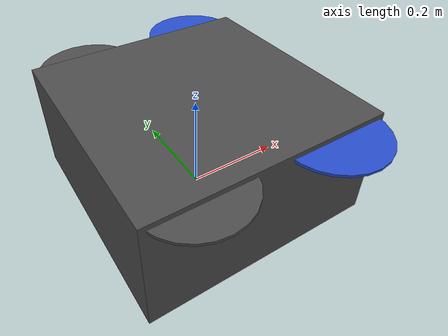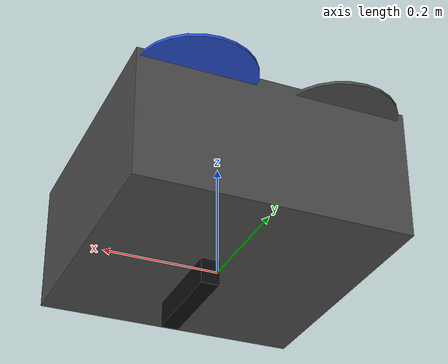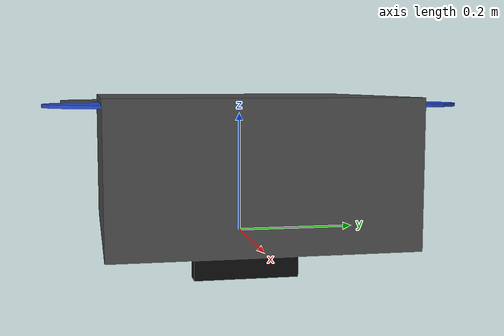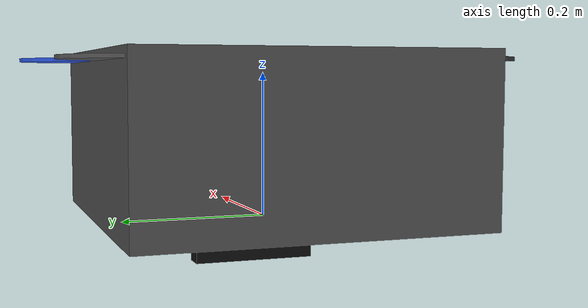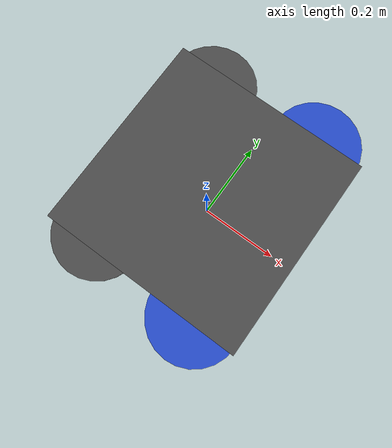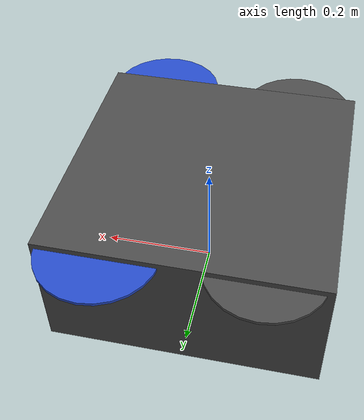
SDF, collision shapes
<?xml version='1.0'?>
<sdf version="1.9">
  <model name="obs_drone">
    <include>
      <uri>model://zed_drone</uri>
    </include>

    <!--
      visual markers for debugging
      - blade root    - teal
      - blade tip     - orange
      - blade cp      - yellow
      - blade forward - red
      - blade upward  - blue
    -->

    <!-- plugins -->
    <plugin filename="gz-sim-joint-state-publisher-system"
      name="gz::sim::systems::JointStatePublisher">
    </plugin>
    <plugin filename="gz-sim-lift-drag-system"
        name="gz::sim::systems::LiftDrag">
      <a0>0.3</a0>
      <alpha_stall>1.4</alpha_stall>
      <cla>4.2500</cla>
      <cda>0.10</cda>
      <cma>0.0</cma>
      <cla_stall>-0.025</cla_stall>
      <cda_stall>0.0</cda_stall>
      <cma_stall>0.0</cma_stall>
      <area>0.002</area>
      <air_density>1.2041</air_density>
      <cp>0.084 0 0</cp>
      <forward>0 1 0</forward>
      <upward>0 0 1</upward>
      <link_name>iris_with_standoffs::rotor_0</link_name>
    </plugin>
    <plugin filename="gz-sim-lift-drag-system"
        name="gz::sim::systems::LiftDrag">
      <a0>0.3</a0>
      <alpha_stall>1.4</alpha_stall>
      <cla>4.2500</cla>
      <cda>0.10</cda>
      <cma>0.0</cma>
      <cla_stall>-0.025</cla_stall>
      <cda_stall>0.0</cda_stall>
      <cma_stall>0.0</cma_stall>
      <area>0.002</area>
      <air_density>1.2041</air_density>
      <cp>-0.084 0 0</cp>
      <forward>0 -1 0</forward>
      <upward>0 0 1</upward>
      <link_name>iris_with_standoffs::rotor_0</link_name>
    </plugin>

    <plugin filename="gz-sim-lift-drag-system"
        name="gz::sim::systems::LiftDrag">
      <a0>0.3</a0>
      <alpha_stall>1.4</alpha_stall>
      <cla>4.2500</cla>
      <cda>0.10</cda>
      <cma>0.0</cma>
      <cla_stall>-0.025</cla_stall>
      <cda_stall>0.0</cda_stall>
      <cma_stall>0.0</cma_stall>
      <area>0.002</area>
      <air_density>1.2041</air_density>
      <cp>0.084 0 0</cp>
      <forward>0 1 0</forward>
      <upward>0 0 1</upward>
      <link_name>iris_with_standoffs::rotor_1</link_name>
    </plugin>
    <plugin filename="gz-sim-lift-drag-system"
        name="gz::sim::systems::LiftDrag">
      <a0>0.3</a0>
      <alpha_stall>1.4</alpha_stall>
      <cla>4.2500</cla>
      <cda>0.10</cda>
      <cma>0.0</cma>
      <cla_stall>-0.025</cla_stall>
      <cda_stall>0.0</cda_stall>
      <cma_stall>0.0</cma_stall>
      <area>0.002</area>
      <air_density>1.2041</air_density>
      <cp>-0.084 0 0</cp>
      <forward>0 -1 0</forward>
      <upward>0 0 1</upward>
      <link_name>iris_with_standoffs::rotor_1</link_name>
    </plugin>

    <plugin filename="gz-sim-lift-drag-system"
        name="gz::sim::systems::LiftDrag">
      <a0>0.3</a0>
      <alpha_stall>1.4</alpha_stall>
      <cla>4.2500</cla>
      <cda>0.10</cda>
      <cma>0.0</cma>
      <cla_stall>-0.025</cla_stall>
      <cda_stall>0.0</cda_stall>
      <cma_stall>0.0</cma_stall>
      <area>0.002</area>
      <air_density>1.2041</air_density>
      <cp>0.084 0 0</cp>
      <forward>0 -1 0</forward>
      <upward>0 0 1</upward>
      <link_name>iris_with_standoffs::rotor_2</link_name>
    </plugin>
    <plugin filename="gz-sim-lift-drag-system"
        name="gz::sim::systems::LiftDrag">
      <a0>0.3</a0>
      <alpha_stall>1.4</alpha_stall>
      <cla>4.2500</cla>
      <cda>0.10</cda>
      <cma>0.0</cma>
      <cla_stall>-0.025</cla_stall>
      <cda_stall>0.0</cda_stall>
      <cma_stall>0.0</cma_stall>
      <area>0.002</area>
      <air_density>1.2041</air_density>
      <cp>-0.084 0 0</cp>
      <forward>0 1 0</forward>
      <upward>0 0 1</upward>
      <link_name>iris_with_standoffs::rotor_2</link_name>
    </plugin>

    <plugin filename="gz-sim-lift-drag-system"
        name="gz::sim::systems::LiftDrag">
      <a0>0.3</a0>
      <alpha_stall>1.4</alpha_stall>
      <cla>4.2500</cla>
      <cda>0.10</cda>
      <cma>0.0</cma>
      <cla_stall>-0.025</cla_stall>
      <cda_stall>0.0</cda_stall>
      <cma_stall>0.0</cma_stall>
      <area>0.002</area>
      <air_density>1.2041</air_density>
      <cp>0.084 0 0</cp>
      <forward>0 -1 0</forward>
      <upward>0 0 1</upward>
      <link_name>iris_with_standoffs::rotor_3</link_name>
    </plugin>
    <plugin filename="gz-sim-lift-drag-system"
        name="gz::sim::systems::LiftDrag">
      <a0>0.3</a0>
      <alpha_stall>1.4</alpha_stall>
      <cla>4.2500</cla>
      <cda>0.10</cda>
      <cma>0.0</cma>
      <cla_stall>-0.025</cla_stall>
      <cda_stall>0.0</cda_stall>
      <cma_stall>0.0</cma_stall>
      <area>0.002</area>
      <air_density>1.2041</air_density>
      <cp>-0.084 0 0</cp>
      <forward>0 1 0</forward>
      <upward>0 0 1</upward>
      <link_name>iris_with_standoffs::rotor_3</link_name>
    </plugin>

    <plugin filename="gz-sim-apply-joint-force-system"
      name="gz::sim::systems::ApplyJointForce">
      <joint_name>iris_with_standoffs::rotor_0_joint</joint_name>
    </plugin>
    <plugin filename="gz-sim-apply-joint-force-system"
      name="gz::sim::systems::ApplyJointForce">
      <joint_name>iris_with_standoffs::rotor_1_joint</joint_name>
    </plugin>
    <plugin filename="gz-sim-apply-joint-force-system"
      name="gz::sim::systems::ApplyJointForce">
      <joint_name>iris_with_standoffs::rotor_2_joint</joint_name>
    </plugin>
    <plugin filename="gz-sim-apply-joint-force-system"
      name="gz::sim::systems::ApplyJointForce">
      <joint_name>iris_with_standoffs::rotor_3_joint</joint_name>
    </plugin>

    <plugin name="ArduPilotPlugin"
      filename="ArduPilotPlugin">
      <!-- Port settings -->
      <fdm_addr>127.0.0.1</fdm_addr>
      <fdm_port_in>9012</fdm_port_in>
      <connectionTimeoutMaxCount>5</connectionTimeoutMaxCount>
      <lock_step>1</lock_step>
      <have_32_channels>0</have_32_channels>

      <!-- Frame conventions
        Require by ArduPilot: change model and gazebo from XYZ to XY-Z coordinates
      -->
      <modelXYZToAirplaneXForwardZDown degrees="true">0 0 0 180 0 0</modelXYZToAirplaneXForwardZDown>
      <gazeboXYZToNED degrees="true">0 0 0 180 0 90</gazeboXYZToNED>

      <!-- Sensors -->
      <imuName>iris_with_standoffs::imu_link::imu_sensor</imuName>

      <!--
          incoming control command [0, 1]
          so offset it by 0 to get [0, 1]
          and divide max target by 1.
          offset = 0
          multiplier = 838 max rpm / 1 = 838
        -->
      <control channel="0">
        <jointName>iris_with_standoffs::rotor_0_joint</jointName>
        <useForce>1</useForce>
        <multiplier>838</multiplier>
        <offset>0</offset>
        <servo_min>1100</servo_min>
        <servo_max>1900</servo_max>
        <type>VELOCITY</type>
        <p_gain>0.20</p_gain>
        <i_gain>0</i_gain>
        <d_gain>0</d_gain>
        <i_max>0</i_max>
        <i_min>0</i_min>
        <cmd_max>2.5</cmd_max>
        <cmd_min>-2.5</cmd_min>
        <controlVelocitySlowdownSim>1</controlVelocitySlowdownSim>
      </control>

      <control channel="1">
        <jointName>iris_with_standoffs::rotor_1_joint</jointName>
        <useForce>1</useForce>
        <multiplier>838</multiplier>
        <offset>0</offset>
        <servo_min>1100</servo_min>
        <servo_max>1900</servo_max>
        <type>VELOCITY</type>
        <p_gain>0.20</p_gain>
        <i_gain>0</i_gain>
        <d_gain>0</d_gain>
        <i_max>0</i_max>
        <i_min>0</i_min>
        <cmd_max>2.5</cmd_max>
        <cmd_min>-2.5</cmd_min>
        <controlVelocitySlowdownSim>1</controlVelocitySlowdownSim>
      </control>

      <control channel="2">
        <jointName>iris_with_standoffs::rotor_2_joint</jointName>
        <useForce>1</useForce>
        <multiplier>-838</multiplier>
        <offset>0</offset>
        <servo_min>1100</servo_min>
        <servo_max>1900</servo_max>
        <type>VELOCITY</type>
        <p_gain>0.20</p_gain>
        <i_gain>0</i_gain>
        <d_gain>0</d_gain>
        <i_max>0</i_max>
        <i_min>0</i_min>
        <cmd_max>2.5</cmd_max>
        <cmd_min>-2.5</cmd_min>
        <controlVelocitySlowdownSim>1</controlVelocitySlowdownSim>
      </control>

      <control channel="3">
        <jointName>iris_with_standoffs::rotor_3_joint</jointName>
        <useForce>1</useForce>
        <multiplier>-838</multiplier>
        <offset>0</offset>
        <servo_min>1100</servo_min>
        <servo_max>1900</servo_max>
        <type>VELOCITY</type>
        <p_gain>0.20</p_gain>
        <i_gain>0</i_gain>
        <d_gain>0</d_gain>
        <i_max>0</i_max>
        <i_min>0</i_min>
        <cmd_max>2.5</cmd_max>
        <cmd_min>-2.5</cmd_min>
        <controlVelocitySlowdownSim>1</controlVelocitySlowdownSim>
      </control>

    </plugin>

  </model>
</sdf>

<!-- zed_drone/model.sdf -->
<sdf version="1.9">
  <model name="obs_drone">
    <include>
      <uri>model://iris_with_standoffs</uri>
    </include>

    <include>
      <uri>model://zed2i</uri>
      <name>zed2i</name>
      <pose degrees="true">0.05 0 -0.05 0 0 90</pose>
    </include>

    <!-- plugins -->
    <plugin filename="gz-sim-joint-state-publisher-system"
      name="gz::sim::systems::JointStatePublisher">
    </plugin>
    <plugin filename="gz-sim-lift-drag-system"
        name="gz::sim::systems::LiftDrag">
      <a0>0.3</a0>
      <alpha_stall>1.4</alpha_stall>
      <cla>4.2500</cla>
      <cda>0.10</cda>
      <cma>0.0</cma>
      <cla_stall>-0.025</cla_stall>
      <cda_stall>0.0</cda_stall>
      <cma_stall>0.0</cma_stall>
      <area>0.002</area>
      <air_density>1.2041</air_density>
      <cp>0.084 0 0</cp>
      <forward>0 1 0</forward>
      <upward>0 0 1</upward>
      <link_name>iris_with_standoffs::rotor_0</link_name>
    </plugin>
    <plugin filename="gz-sim-lift-drag-system"
        name="gz::sim::systems::LiftDrag">
      <a0>0.3</a0>
      <alpha_stall>1.4</alpha_stall>
      <cla>4.2500</cla>
      <cda>0.10</cda>
      <cma>0.0</cma>
      <cla_stall>-0.025</cla_stall>
      <cda_stall>0.0</cda_stall>
      <cma_stall>0.0</cma_stall>
      <area>0.002</area>
      <air_density>1.2041</air_density>
      <cp>-0.084 0 0</cp>
      <forward>0 -1 0</forward>
      <upward>0 0 1</upward>
      <link_name>iris_with_standoffs::rotor_0</link_name>
    </plugin>

    <plugin filename="gz-sim-lift-drag-system"
        name="gz::sim::systems::LiftDrag">
      <a0>0.3</a0>
      <alpha_stall>1.4</alpha_stall>
      <cla>4.2500</cla>
      <cda>0.10</cda>
      <cma>0.0</cma>
      <cla_stall>-0.025</cla_stall>
      <cda_stall>0.0</cda_stall>
      <cma_stall>0.0</cma_stall>
      <area>0.002</area>
      <air_density>1.2041</air_density>
      <cp>0.084 0 0</cp>
      <forward>0 1 0</forward>
      <upward>0 0 1</upward>
      <link_name>iris_with_standoffs::rotor_1</link_name>
    </plugin>
    <plugin filename="gz-sim-lift-drag-system"
        name="gz::sim::systems::LiftDrag">
      <a0>0.3</a0>
      <alpha_stall>1.4</alpha_stall>
      <cla>4.2500</cla>
      <cda>0.10</cda>
      <cma>0.0</cma>
      <cla_stall>-0.025</cla_stall>
      <cda_stall>0.0</cda_stall>
      <cma_stall>0.0</cma_stall>
      <area>0.002</area>
      <air_density>1.2041</air_density>
      <cp>-0.084 0 0</cp>
      <forward>0 -1 0</forward>
      <upward>0 0 1</upward>
      <link_name>iris_with_standoffs::rotor_1</link_name>
    </plugin>

    <plugin filename="gz-sim-lift-drag-system"
        name="gz::sim::systems::LiftDrag">
      <a0>0.3</a0>
      <alpha_stall>1.4</alpha_stall>
      <cla>4.2500</cla>
      <cda>0.10</cda>
      <cma>0.0</cma>
      <cla_stall>-0.025</cla_stall>
      <cda_stall>0.0</cda_stall>
      <cma_stall>0.0</cma_stall>
      <area>0.002</area>
      <air_density>1.2041</air_density>
      <cp>0.084 0 0</cp>
      <forward>0 -1 0</forward>
      <upward>0 0 1</upward>
      <link_name>iris_with_standoffs::rotor_2</link_name>
    </plugin>
    <plugin filename="gz-sim-lift-drag-system"
        name="gz::sim::systems::LiftDrag">
      <a0>0.3</a0>
      <alpha_stall>1.4</alpha_stall>
      <cla>4.2500</cla>
      <cda>0.10</cda>
      <cma>0.0</cma>
      <cla_stall>-0.025</cla_stall>
      <cda_stall>0.0</cda_stall>
      <cma_stall>0.0</cma_stall>
      <area>0.002</area>
      <air_density>1.2041</air_density>
      <cp>-0.084 0 0</cp>
      <forward>0 1 0</forward>
      <upward>0 0 1</upward>
      <link_name>iris_with_standoffs::rotor_2</link_name>
    </plugin>

    <plugin filename="gz-sim-lift-drag-system"
        name="gz::sim::systems::LiftDrag">
      <a0>0.3</a0>
      <alpha_stall>1.4</alpha_stall>
      <cla>4.2500</cla>
      <cda>0.10</cda>
      <cma>0.0</cma>
      <cla_stall>-0.025</cla_stall>
      <cda_stall>0.0</cda_stall>
      <cma_stall>0.0</cma_stall>
      <area>0.002</area>
      <air_density>1.2041</air_density>
      <cp>0.084 0 0</cp>
      <forward>0 -1 0</forward>
      <upward>0 0 1</upward>
      <link_name>iris_with_standoffs::rotor_3</link_name>
    </plugin>
    <plugin filename="gz-sim-lift-drag-system"
        name="gz::sim::systems::LiftDrag">
      <a0>0.3</a0>
      <alpha_stall>1.4</alpha_stall>
      <cla>4.2500</cla>
      <cda>0.10</cda>
      <cma>0.0</cma>
      <cla_stall>-0.025</cla_stall>
      <cda_stall>0.0</cda_stall>
      <cma_stall>0.0</cma_stall>
      <area>0.002</area>
      <air_density>1.2041</air_density>
      <cp>-0.084 0 0</cp>
      <forward>0 1 0</forward>
      <upward>0 0 1</upward>
      <link_name>iris_with_standoffs::rotor_3</link_name>
    </plugin>

    <plugin filename="gz-sim-apply-joint-force-system"
      name="gz::sim::systems::ApplyJointForce">
      <joint_name>iris_with_standoffs::rotor_0_joint</joint_name>
    </plugin>
    <plugin filename="gz-sim-apply-joint-force-system"
      name="gz::sim::systems::ApplyJointForce">
      <joint_name>iris_with_standoffs::rotor_1_joint</joint_name>
    </plugin>
    <plugin filename="gz-sim-apply-joint-force-system"
      name="gz::sim::systems::ApplyJointForce">
      <joint_name>iris_with_standoffs::rotor_2_joint</joint_name>
    </plugin>
    <plugin filename="gz-sim-apply-joint-force-system"
      name="gz::sim::systems::ApplyJointForce">
      <joint_name>iris_with_standoffs::rotor_3_joint</joint_name>
    </plugin>

    <plugin name="ArduPilotPlugin"
      filename="ArduPilotPlugin">
      <!-- Port settings -->
      <fdm_addr>127.0.0.1</fdm_addr>
      <fdm_port_in>9012</fdm_port_in>
      <connectionTimeoutMaxCount>5</connectionTimeoutMaxCount>
      <lock_step>1</lock_step>
      <no_time_sync>1</no_time_sync>

      <!-- Frame conventions
        Require by ArduPilot: change model and gazebo from XYZ to XY-Z coordinates
      -->
      <modelXYZToAirplaneXForwardZDown degrees="true">0 0 0 180 0 0</modelXYZToAirplaneXForwardZDown>
      <gazeboXYZToNED degrees="true">0 0 0 180 0 90</gazeboXYZToNED>

      <!-- Sensors -->
      <imuName>iris_with_standoffs::imu_link::imu_sensor</imuName>

      <!--
          incoming control command [0, 1]
          so offset it by 0 to get [0, 1]
          and divide max target by 1.
          offset = 0
          multiplier = 838 max rpm / 1 = 838
        -->
      <control channel="0">
        <jointName>iris_with_standoffs::rotor_0_joint</jointName>
        <useForce>1</useForce>
        <multiplier>838</multiplier>
        <offset>0</offset>
        <servo_min>1100</servo_min>
        <servo_max>1900</servo_max>
        <type>VELOCITY</type>
        <p_gain>0.20</p_gain>
        <i_gain>0</i_gain>
        <d_gain>0</d_gain>
        <i_max>0</i_max>
        <i_min>0</i_min>
        <cmd_max>2.5</cmd_max>
        <cmd_min>-2.5</cmd_min>
        <controlVelocitySlowdownSim>1</controlVelocitySlowdownSim>
      </control>

      <control channel="1">
        <jointName>iris_with_standoffs::rotor_1_joint</jointName>
        <useForce>1</useForce>
        <multiplier>838</multiplier>
        <offset>0</offset>
        <servo_min>1100</servo_min>
        <servo_max>1900</servo_max>
        <type>VELOCITY</type>
        <p_gain>0.20</p_gain>
        <i_gain>0</i_gain>
        <d_gain>0</d_gain>
        <i_max>0</i_max>
        <i_min>0</i_min>
        <cmd_max>2.5</cmd_max>
        <cmd_min>-2.5</cmd_min>
        <controlVelocitySlowdownSim>1</controlVelocitySlowdownSim>
      </control>

      <control channel="2">
        <jointName>iris_with_standoffs::rotor_2_joint</jointName>
        <useForce>1</useForce>
        <multiplier>-838</multiplier>
        <offset>0</offset>
        <servo_min>1100</servo_min>
        <servo_max>1900</servo_max>
        <type>VELOCITY</type>
        <p_gain>0.20</p_gain>
        <i_gain>0</i_gain>
        <d_gain>0</d_gain>
        <i_max>0</i_max>
        <i_min>0</i_min>
        <cmd_max>2.5</cmd_max>
        <cmd_min>-2.5</cmd_min>
        <controlVelocitySlowdownSim>1</controlVelocitySlowdownSim>
      </control>

      <control channel="3">
        <jointName>iris_with_standoffs::rotor_3_joint</jointName>
        <useForce>1</useForce>
        <multiplier>-838</multiplier>
        <offset>0</offset>
        <servo_min>1100</servo_min>
        <servo_max>1900</servo_max>
        <type>VELOCITY</type>
        <p_gain>0.20</p_gain>
        <i_gain>0</i_gain>
        <d_gain>0</d_gain>
        <i_max>0</i_max>
        <i_min>0</i_min>
        <cmd_max>2.5</cmd_max>
        <cmd_min>-2.5</cmd_min>
        <controlVelocitySlowdownSim>1</controlVelocitySlowdownSim>
      </control>

      <!-- roll range is -30 to +30 deg -->
      <control channel="8">
        <jointName>gimbal::roll_joint</jointName>
        <multiplier>1.047197551196</multiplier>
        <offset>-0.5</offset>
        <servo_min>1100</servo_min>
        <servo_max>1900</servo_max>
        <type>COMMAND</type>
        <cmd_topic>/gimbal/cmd_roll</cmd_topic>
        <p_gain>2</p_gain>
      </control>

      <!-- pitch range is -135 to +45 deg -->
      <control channel="9">
        <jointName>gimbal::pitch_joint</jointName>
        <multiplier>-3.14159265</multiplier>
        <offset>-0.75</offset>
        <servo_min>1100</servo_min>
        <servo_max>1900</servo_max>
        <type>COMMAND</type>
        <cmd_topic>/gimbal/cmd_pitch</cmd_topic>
        <p_gain>2</p_gain>
      </control>

      <!-- yaw range is -160 to +160 deg -->
      <control channel="10">
        <jointName>gimbal::yaw_joint</jointName>
        <multiplier>-5.5850536</multiplier>
        <offset>-0.5</offset>
        <servo_min>1100</servo_min>
        <servo_max>1900</servo_max>
        <type>COMMAND</type>
        <cmd_topic>/gimbal/cmd_yaw</cmd_topic>
        <p_gain>2</p_gain>
      </control>

    </plugin>

  </model>
</sdf>

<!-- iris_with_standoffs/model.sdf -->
<sdf version='1.6'>
  <model name='iris'>
    <pose>0 0 0.194923 0 0 0</pose>
    <link name='base_link'>
      <velocity_decay>
        <linear>0.0</linear>
        <angular>0.0</angular>
      </velocity_decay>
      <inertial>
        <pose>0 0 0 0 0 0</pose>
        <mass>1.5</mass>
        <inertia>
          <ixx>0.008</ixx>
          <ixy>0</ixy>
          <ixz>0</ixz>
          <iyy>0.015</iyy>
          <iyz>0</iyz>
          <izz>0.017</izz>
        </inertia>
      </inertial>
      <collision name='base_link_collision'>
        <pose>0 0 -0.08 0 0 0</pose>
        <geometry>
          <box>
            <size>0.47 0.47 0.23</size>
          </box>
        </geometry>
        <surface>
          <contact>
            <ode>
              <max_vel>100.0</max_vel>
              <min_depth>0.001</min_depth>
            </ode>
          </contact>
          <friction>
            <ode>
              <mu>1.0</mu>
              <mu2>1.0</mu2>
            </ode>
          </friction>
        </surface>
      </collision>
      <visual name='base_link_visual'>
        <geometry>
          <mesh>
            <uri>model://iris_with_standoffs/meshes/iris.dae</uri>
          </mesh>
        </geometry>
        <material>
          <script>
            <name>Gazebo/DarkGrey</name>
          </script>
        </material>
      </visual>

      <visual name='front_left_leg_visual'>
        <pose>0.123 0.22 -0.11 0 0 0</pose>
        <geometry>
          <cylinder>
            <radius>0.005</radius>
            <length>0.17</length>
          </cylinder>
        </geometry>
        <material>
          <script>
            <name>Gazebo/FlatBlack</name>
            <uri>file://media/materials/scripts/gazebo.material</uri>
          </script>
        </material>
      </visual>
      <visual name='front_right_leg_visual'>
        <pose>0.123 -0.22 -0.11 0 0 0</pose>
        <geometry>
          <cylinder>
            <radius>0.005</radius>
            <length>0.17</length>
          </cylinder>
        </geometry>
        <material>
          <script>
            <name>Gazebo/FlatBlack</name>
            <uri>file://media/materials/scripts/gazebo.material</uri>
          </script>
        </material>
      </visual>
      <visual name='rear_left_leg_visual'>
        <pose>-0.140 0.21 -0.11 0 0 0</pose>
        <geometry>
          <cylinder>
            <radius>0.005</radius>
            <length>0.17</length>
          </cylinder>
        </geometry>
        <material>
          <script>
            <name>Gazebo/FlatBlack</name>
            <uri>file://media/materials/scripts/gazebo.material</uri>
          </script>
        </material>
      </visual>
      <visual name='rear_right_leg_visual'>
        <pose>-0.140 -0.21 -0.11 0 0 0</pose>
        <geometry>
          <cylinder>
            <radius>0.005</radius>
            <length>0.17</length>
          </cylinder>
        </geometry>
        <material>
          <script>
            <name>Gazebo/FlatBlack</name>
            <uri>file://media/materials/scripts/gazebo.material</uri>
          </script>
        </material>
      </visual>
    </link>
    <link name='iris/ground_truth/odometry_sensorgt_link'>
      <pose>0 0 0 0 -0 0</pose>
      <inertial>
        <pose>0 0 0 0 -0 0</pose>
        <mass>0.15</mass>
        <inertia>
          <ixx>0.0001</ixx>
          <ixy>0</ixy>
          <ixz>0</ixz>
          <iyy>0.0002</iyy>
          <iyz>0</iyz>
          <izz>0.0002</izz>
        </inertia>
      </inertial>
    </link>
    <joint name='iris/ground_truth/odometry_sensorgt_joint' type='revolute'>
      <child>iris/ground_truth/odometry_sensorgt_link</child>
      <parent>base_link</parent>
      <axis>
        <xyz>0 0 1</xyz>
        <limit>
          <lower>0</lower>
          <upper>0</upper>
          <effort>0</effort>
          <velocity>0</velocity>
        </limit>
        <dynamics>
          <damping>1.0</damping>
        </dynamics>
        <use_parent_model_frame>1</use_parent_model_frame>
      </axis>
      <physics>
        <ode>
          <implicit_spring_damper>1</implicit_spring_damper>
        </ode>
      </physics>
    </joint>
    <link name='iris/imu_link'>
      <inertial>
        <pose>0 0 0 0 0 0</pose>
        <mass>0.15</mass>
        <inertia>
          <ixx>0.00001</ixx>
          <ixy>0</ixy>
          <ixz>0</ixz>
          <iyy>0.00002</iyy>
          <iyz>0</iyz>
          <izz>0.00002</izz>
        </inertia>
      </inertial>
      <sensor name="imu_sensor" type="imu">
        <pose>0 0 0 3.141593 0 0</pose>
        <always_on>1</always_on>
        <update_rate>1000.0</update_rate>
      </sensor>
    </link>
    <joint name='iris/imu_joint' type='revolute'>
      <child>iris/imu_link</child>
      <parent>base_link</parent>
      <axis>
        <xyz>0 0 1</xyz>
        <limit>
          <lower>0</lower>
          <upper>0</upper>
          <effort>0</effort>
          <velocity>0</velocity>
        </limit>
        <dynamics>
          <damping>1.0</damping>
        </dynamics>
        <use_parent_model_frame>1</use_parent_model_frame>
      </axis>
      <physics>
        <ode>
          <implicit_spring_damper>1</implicit_spring_damper>
        </ode>
      </physics>
    </joint>
    <link name='rotor_0'>
      <pose>0.13 -0.22 0.023 0 -0 0</pose>
      <inertial>
        <pose>0 0 0 0 -0 0</pose>
        <mass>0.025</mass>
        <inertia>
          <ixx>9.75e-06</ixx>
          <ixy>0</ixy>
          <ixz>0</ixz>
          <iyy>0.000166704</iyy>
          <iyz>0</iyz>
          <izz>0.000167604</izz>
        </inertia>
      </inertial>
      <collision name='rotor_0_collision'>
        <pose>0 0 0 0 -0 0</pose>
        <geometry>
          <cylinder>
            <length>0.005</length>
            <radius>0.1</radius>
          </cylinder>
        </geometry>
        <surface>
          <contact>
            <ode/>
          </contact>
          <friction>
            <ode/>
          </friction>
        </surface>
      </collision>
      <visual name='rotor_0_visual'>
        <pose>0 0 0 0 -0 0</pose>
        <geometry>
          <mesh>
            <scale>1 1 1</scale>
            <uri>model://iris_with_standoffs/meshes/iris_prop_ccw.dae</uri>
          </mesh>
        </geometry>
        <material>
          <script>
            <name>Gazebo/Blue</name>
            <uri>__default__</uri>
          </script>
        </material>
      </visual>
      <gravity>1</gravity>
      <velocity_decay/>
      <self_collide>0</self_collide>
    </link>
    <joint name='rotor_0_joint' type='revolute'>
      <child>rotor_0</child>
      <parent>base_link</parent>
      <axis>
        <xyz>0 0 1</xyz>
        <limit>
          <lower>-1e+16</lower>
          <upper>1e+16</upper>
        </limit>
        <dynamics>
          <damping>0.004</damping>
        </dynamics>
        <use_parent_model_frame>1</use_parent_model_frame>
      </axis>
      <physics>
        <ode>
          <implicit_spring_damper>1</implicit_spring_damper>
        </ode>
      </physics>
    </joint>
    <link name='rotor_1'>
      <pose>-0.13 0.2 0.023 0 -0 0</pose>
      <inertial>
        <pose>0 0 0 0 -0 0</pose>
        <mass>0.025</mass>
        <inertia>
          <ixx>9.75e-06</ixx>
          <ixy>0</ixy>
          <ixz>0</ixz>
          <iyy>0.000166704</iyy>
          <iyz>0</iyz>
          <izz>0.000167604</izz>
        </inertia>
      </inertial>
      <collision name='rotor_1_collision'>
        <pose>0 0 0 0 -0 0</pose>
        <geometry>
          <cylinder>
            <length>0.005</length>
            <radius>0.1</radius>
          </cylinder>
        </geometry>
        <surface>
          <contact>
            <ode/>
          </contact>
          <friction>
            <ode/>
          </friction>
        </surface>
      </collision>
      <visual name='rotor_1_visual'>
        <pose>0 0 0 0 -0 0</pose>
        <geometry>
          <mesh>
            <scale>1 1 1</scale>
            <uri>model://iris_with_standoffs/meshes/iris_prop_ccw.dae</uri>
          </mesh>
        </geometry>
        <material>
          <script>
            <name>Gazebo/DarkGrey</name>
            <uri>__default__</uri>
          </script>
        </material>
      </visual>
      <gravity>1</gravity>
      <velocity_decay/>
      <self_collide>0</self_collide>
    </link>
    <joint name='rotor_1_joint' type='revolute'>
      <child>rotor_1</child>
      <parent>base_link</parent>
      <axis>
        <xyz>0 0 1</xyz>
        <limit>
          <lower>-1e+16</lower>
          <upper>1e+16</upper>
        </limit>
        <dynamics>
          <damping>0.004</damping>
        </dynamics>
        <use_parent_model_frame>1</use_parent_model_frame>
      </axis>
      <physics>
        <ode>
          <implicit_spring_damper>1</implicit_spring_damper>
        </ode>
      </physics>
    </joint>
    <link name='rotor_2'>
      <pose>0.13 0.22 0.023 0 -0 0</pose>
      <inertial>
        <pose>0 0 0 0 -0 0</pose>
        <mass>0.025</mass>
        <inertia>
          <ixx>9.75e-06</ixx>
          <ixy>0</ixy>
          <ixz>0</ixz>
          <iyy>0.000166704</iyy>
          <iyz>0</iyz>
          <izz>0.000167604</izz>
        </inertia>
      </inertial>
      <collision name='rotor_2_collision'>
        <pose>0 0 0 0 -0 0</pose>
        <geometry>
          <cylinder>
            <length>0.005</length>
            <radius>0.1</radius>
          </cylinder>
        </geometry>
        <surface>
          <contact>
            <ode/>
          </contact>
          <friction>
            <ode/>
          </friction>
        </surface>
      </collision>
      <visual name='rotor_2_visual'>
        <pose>0 0 0 0 -0 0</pose>
        <geometry>
          <mesh>
            <scale>1 1 1</scale>
            <uri>model://iris_with_standoffs/meshes/iris_prop_cw.dae</uri>
          </mesh>
        </geometry>
        <material>
          <script>
            <name>Gazebo/Blue</name>
            <uri>__default__</uri>
          </script>
        </material>
      </visual>
      <gravity>1</gravity>
      <velocity_decay/>
      <self_collide>0</self_collide>
    </link>
    <joint name='rotor_2_joint' type='revolute'>
      <child>rotor_2</child>
      <parent>base_link</parent>
      <axis>
        <xyz>0 0 1</xyz>
        <limit>
          <lower>-1e+16</lower>
          <upper>1e+16</upper>
        </limit>
        <dynamics>
          <damping>0.004</damping>
        </dynamics>
        <use_parent_model_frame>1</use_parent_model_frame>
      </axis>
      <physics>
        <ode>
          <implicit_spring_damper>1</implicit_spring_damper>
        </ode>
      </physics>
    </joint>
    <link name='rotor_3'>
      <pose>-0.13 -0.2 0.023 0 -0 0</pose>
      <inertial>
        <pose>0 0 0 0 -0 0</pose>
        <mass>0.025</mass>
        <inertia>
          <ixx>9.75e-06</ixx>
          <ixy>0</ixy>
          <ixz>0</ixz>
          <iyy>0.000166704</iyy>
          <iyz>0</iyz>
          <izz>0.000167604</izz>
        </inertia>
      </inertial>
      <collision name='rotor_3_collision'>
        <pose>0 0 0 0 -0 0</pose>
        <geometry>
          <cylinder>
            <length>0.005</length>
            <radius>0.1</radius>
          </cylinder>
        </geometry>
        <surface>
          <contact>
            <ode/>
          </contact>
          <friction>
            <ode/>
          </friction>
        </surface>
      </collision>
      <visual name='rotor_3_visual'>
        <pose>0 0 0 0 -0 0</pose>
        <geometry>
          <mesh>
            <scale>1 1 1</scale>
            <uri>model://iris_with_standoffs/meshes/iris_prop_cw.dae</uri>
          </mesh>
        </geometry>
        <material>
          <script>
            <name>Gazebo/DarkGrey</name>
            <uri>__default__</uri>
          </script>
        </material>
      </visual>
      <gravity>1</gravity>
      <velocity_decay/>
      <self_collide>0</self_collide>
    </link>
    <joint name='rotor_3_joint' type='revolute'>
      <child>rotor_3</child>
      <parent>base_link</parent>
      <axis>
        <xyz>0 0 1</xyz>
        <limit>
          <lower>-1e+16</lower>
          <upper>1e+16</upper>
        </limit>
        <dynamics>
          <damping>0.004</damping>
        </dynamics>
        <use_parent_model_frame>1</use_parent_model_frame>
      </axis>
      <physics>
        <ode>
          <implicit_spring_damper>1</implicit_spring_damper>
        </ode>
      </physics>
    </joint>
    <static>0</static>
  </model>
</sdf>

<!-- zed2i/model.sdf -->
<sdf version="1.10">
  <model name="zed2i">
    <static>false</static>
    <link name="base_link">
      <inertial>
        <mass>0.27</mass>
        <inertia>
          <ixx>0.00025</ixx><iyy>0.00080</iyy><izz>0.00090</izz>
          <ixy>0</ixy><ixz>0</ixz><iyz>0</iyz>
        </inertia>
      </inertial>
      <collision name="collision">
        <geometry><box><size>0.17525 0.03025 0.04310</size></box></geometry>
      </collision>
      <visual name="visual">
        <geometry>
          <mesh>
            <uri>model://zed2i/meshes/zed2i.stl</uri>
            <pose>0.00897 0.03020 0.00262 0 0 0</pose>
            <scale>0.001 0.001 0.001</scale>
          </mesh>
        </geometry>
        <material>
          <ambient>0.02 0.02 0.02 1</ambient>
          <diffuse>0.05 0.05 0.05 1</diffuse>
          <specular>0.15 0.15 0.15 1</specular>
        </material>
      </visual>
      <sensor name="imu" type="imu">
        <always_on>true</always_on>
        <update_rate>200</update_rate>
        <topic>/zed2i/imu</topic>
      </sensor>
    </link>
    <link name="camera_link">
      <sensor name="zed2i_rgbd" type="rgbd_camera">
        <pose>0 0 0 0 0 -1.57</pose>
        <always_on>true</always_on>
        <visualize>true</visualize>
        <update_rate>30</update_rate>
        <topic>/zed2i</topic>
        <camera>
          <horizontal_fov>1.91986</horizontal_fov>
          <image>
            <width>1280</width>
            <height>720</height>
            <format>R8G8B8</format>
          </image>
          <clip>
            <near>0.15</near>
            <far>40.0</far>
          </clip>
        </camera>
      </sensor>
    </link>
    <joint name="camera_joint" type="fixed">
      <parent>base_link</parent>
      <child>camera_link</child>
    </joint>
    <frame name="camera_optical_frame" attached_to="camera_link">
      <pose>0 0 0 -1.57079632679 0 -1.57079632679</pose>
    </frame>
  </model>
</sdf>
